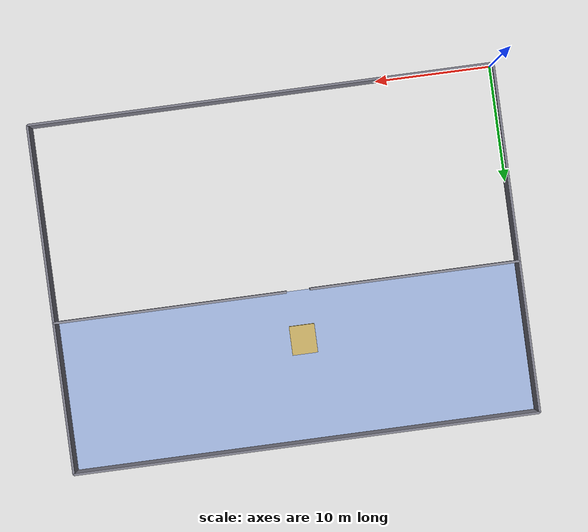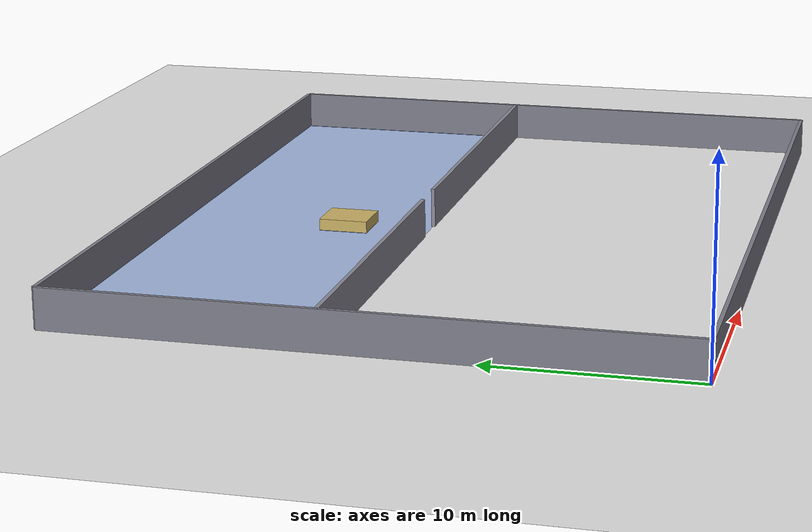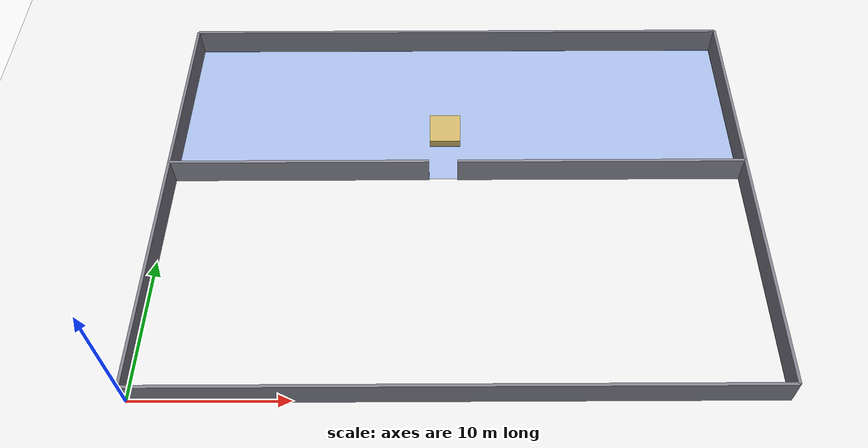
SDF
<?xml version="1.0"?>
<sdf version="1.7">
  <world name="hospital">
    <physics type="dart"><max_step_size>0.01</max_step_size><real_time_update_rate>100</real_time_update_rate></physics>
    <plugin filename="ignition-gazebo-physics-system" name="ignition::gazebo::systems::Physics"/>
    <plugin filename="ignition-gazebo-sensors-system" name="ignition::gazebo::systems::Sensors"><render_engine>ogre2</render_engine></plugin>
    <plugin filename="ignition-gazebo-user-commands-system" name="ignition::gazebo::systems::UserCommands"/>
    <plugin filename="ignition-gazebo-scene-broadcaster-system" name="ignition::gazebo::systems::SceneBroadcaster"/>
    <light type="directional" name="sun"><pose>0 0 10 0 0 0</pose><diffuse>1 1 1 1</diffuse><direction>-0.3 -0.3 -1</direction></light>
    <model name="ground"><static>true</static><link name="l">
      <collision name="c"><geometry><plane><normal>0 0 1</normal><size>40 30</size></plane></geometry></collision>
      <visual name="v"><geometry><plane><normal>0 0 1</normal><size>40 30</size></plane></geometry>
        <material><ambient>0.9 0.9 0.9 1</ambient></material></visual></link>
      <pose>20.0 15.0 0 0 0 0</pose></model>
    <model name="zone_ward"><static>true</static>
      <pose>20.000 23.500 0.01 0 0 0</pose>
      <link name="l"><visual name="v"><geometry><box><size>40.000 13.000 0.02</size></box></geometry>
        <material><ambient>0.3 0.5 0.9 0.4</ambient><diffuse>0.3 0.5 0.9 0.4</diffuse></material></visual></link>
    </model>
    <model name="obs_0"><static>true</static>
      <pose>9.000 17.000 1.000 0 0 0</pose>
      <link name="l"><collision name="c"><geometry><box><size>18.000 0.200 2.000</size></box></geometry></collision>
      <visual name="v"><geometry><box><size>18.000 0.200 2.000</size></box></geometry>
        <material><ambient>0.55 0.55 0.6 1</ambient><diffuse>0.55 0.55 0.6 1</diffuse></material></visual></link>
    </model>
    <model name="obs_1"><static>true</static>
      <pose>30.000 17.000 1.000 0 0 0</pose>
      <link name="l"><collision name="c"><geometry><box><size>20.000 0.200 2.000</size></box></geometry></collision>
      <visual name="v"><geometry><box><size>20.000 0.200 2.000</size></box></geometry>
        <material><ambient>0.55 0.55 0.6 1</ambient><diffuse>0.55 0.55 0.6 1</diffuse></material></visual></link>
    </model>
    <model name="obs_2"><static>true</static>
      <pose>19.100 21.250 0.300 0 0 0</pose>
      <link name="l"><collision name="c"><geometry><box><size>2.200 2.500 0.600</size></box></geometry></collision>
      <visual name="v"><geometry><box><size>2.200 2.500 0.600</size></box></geometry>
        <material><ambient>0.8 0.7 0.4 1</ambient><diffuse>0.8 0.7 0.4 1</diffuse></material></visual></link>
    </model>
    <model name="wall_s"><static>true</static>
      <pose>20.000 0.000 1.000 0 0 0</pose>
      <link name="l"><collision name="c"><geometry><box><size>40.000 0.200 2.000</size></box></geometry></collision>
      <visual name="v"><geometry><box><size>40.000 0.200 2.000</size></box></geometry>
        <material><ambient>0.5 0.5 0.55 1</ambient><diffuse>0.5 0.5 0.55 1</diffuse></material></visual></link>
    </model>
    <model name="wall_n"><static>true</static>
      <pose>20.000 30.000 1.000 0 0 0</pose>
      <link name="l"><collision name="c"><geometry><box><size>40.000 0.200 2.000</size></box></geometry></collision>
      <visual name="v"><geometry><box><size>40.000 0.200 2.000</size></box></geometry>
        <material><ambient>0.5 0.5 0.55 1</ambient><diffuse>0.5 0.5 0.55 1</diffuse></material></visual></link>
    </model>
    <model name="wall_w"><static>true</static>
      <pose>0.000 15.000 1.000 0 0 0</pose>
      <link name="l"><collision name="c"><geometry><box><size>0.200 30.000 2.000</size></box></geometry></collision>
      <visual name="v"><geometry><box><size>0.200 30.000 2.000</size></box></geometry>
        <material><ambient>0.5 0.5 0.55 1</ambient><diffuse>0.5 0.5 0.55 1</diffuse></material></visual></link>
    </model>
    <model name="wall_e"><static>true</static>
      <pose>40.000 15.000 1.000 0 0 0</pose>
      <link name="l"><collision name="c"><geometry><box><size>0.200 30.000 2.000</size></box></geometry></collision>
      <visual name="v"><geometry><box><size>0.200 30.000 2.000</size></box></geometry>
        <material><ambient>0.5 0.5 0.55 1</ambient><diffuse>0.5 0.5 0.55 1</diffuse></material></visual></link>
    </model>
  </world>
</sdf>
